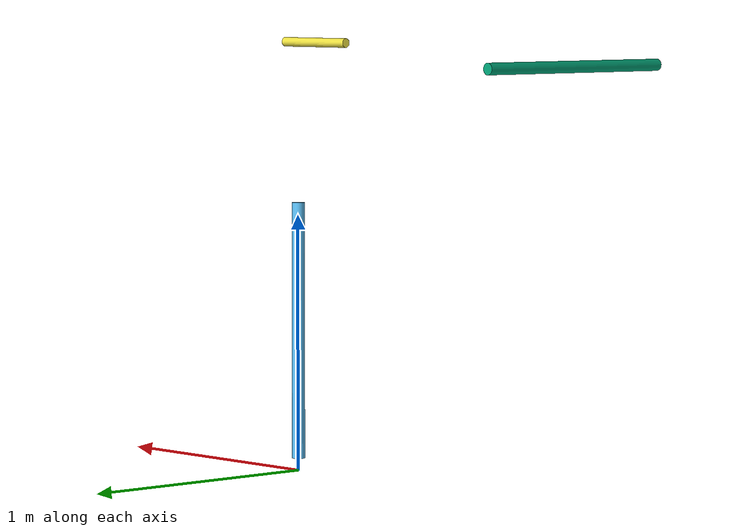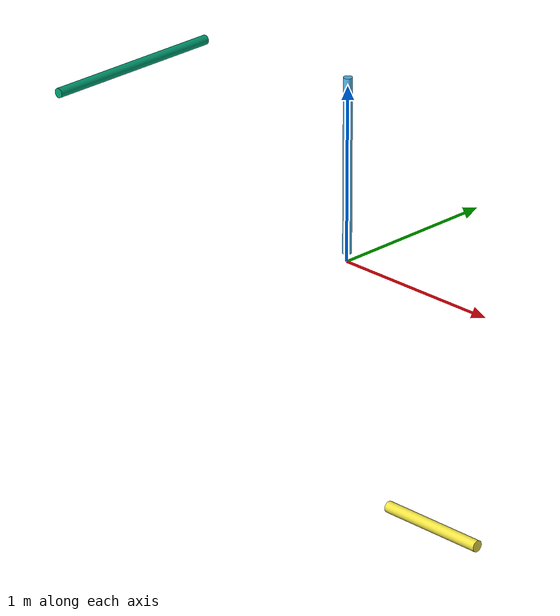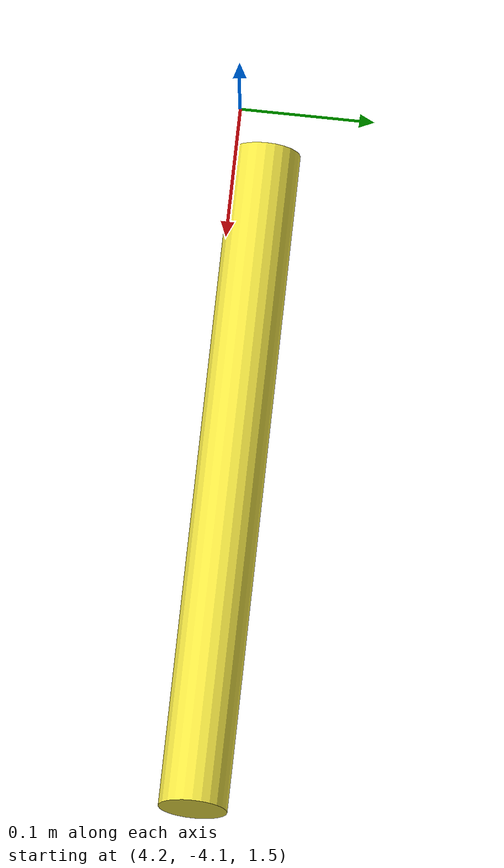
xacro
<?xml version="1.0"?>
<robot name="scara">

 <!-- Used for fixing robot to Gazebo 'base_link' -->
  <link name="world"/>

  <joint name="world_to_L1" type="fixed">
    <parent link="world"/>
    <child link="L1"/>
    <axis xyz="0 0 1"/>
    <origin xyz="0 0 0.025"/>
    <limit effort="30" velocity="1.0"/>
  </joint>

  <link name="L1">
    <visual>
      <geometry>
        <cylinder length="1" radius="0.025"/>
      </geometry>
      <origin rpy="0 0 0" xyz="0 0 0.525"/>
    </visual>
    <collision>
      <geometry>
        <cylinder length="1" radius="0.025"/>
      </geometry>
    </collision>
    <inertial>
        <origin xyz="0 0 0" rpy="0 0 0" />
        <mass value="1" />
        <inertia
          ixx="1.0" ixy="0.0" ixz="0.0"
          iyy="1.0" iyz="0.0"
          izz="1.0" />
    </inertial>
  </link>

  <joint name="L1_to_L2" type="fixed">
    <parent link="L1"/>
    <child link="L2"/>
    <axis xyz="1 0 0"/>
    <origin rpy="1.5707 0 0" xyz="0 0 1.525"/>
    <limit effort="30" velocity="1.0"/>
  </joint>

  <link name="L2">
    <visual>
      <geometry>
        <cylinder length="1" radius="0.025"/>
      </geometry>
      <origin rpy="0 0 0" xyz="0 0 1.525"/>
    </visual>
    <collision>
      <geometry>
        <cylinder length="1" radius="0.025"/>
      </geometry>
    </collision>
    <inertial>
        <origin xyz="0 0 0" rpy="0 0 0" />
        <mass value="1" />
        <inertia
          ixx="1.0" ixy="0.0" ixz="0.0"
          iyy="1.0" iyz="0.0"
          izz="1.0" />
    </inertial>
  </link>

  <joint name="L2_to_end_effector" type="prismatic">
    <parent link="L2"/>
    <child link="end_effector"/>
    <axis xyz="1 0 0"/>
    <origin rpy="0 0 0" xyz="0.25 0 2.0375"/>
    <limit upper="5" lower="3" effort="30" velocity="1.0"/>
  </joint>

  <transmission name="end_effector_trans">
    <type>transmission_interface/SimpleTransmission</type>
    <actuator name="end_effector_prismatic_motor">
        <mechanicalReduction>1</mechanicalReduction>
    </actuator>
    <joint name="L2_to_end_effector">
        <hardwareInterface>hardware_interface/PositionJointInterface</hardwareInterface>
    </joint>
  </transmission>

  <link name="end_effector">
    <visual>
      <geometry>
        <cylinder length="0.5" radius="0.025"/>
      </geometry>
      <origin rpy="0 1.5707 0" xyz="0.25 0 2.0375"/>
    </visual>
    <collision>
      <geometry>
        <cylinder length="0.5" radius="0.025"/>
      </geometry>
    </collision>
    <inertial>
        <origin xyz="0 0 0" rpy="0 0 0" />
        <mass value="1" />
        <inertia
          ixx="1.0" ixy="0.0" ixz="0.0"
          iyy="1.0" iyz="0.0"
          izz="1.0" />
    </inertial>
  </link>

  <gazebo>
    <plugin name="gazebo_ros_control" filename="libgazebo_ros_control.so">
      <robotNamespace>/SCARA</robotNamespace>
    </plugin>
  </gazebo>
</robot>
